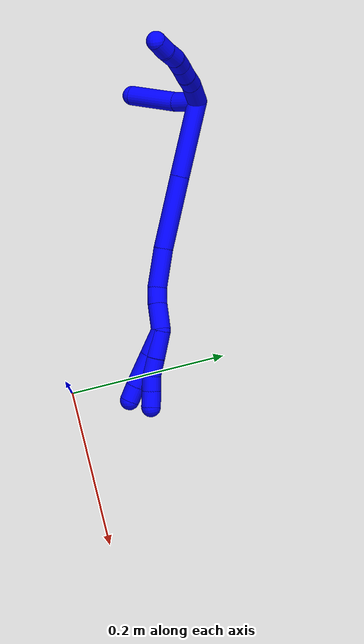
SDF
<sdf version="1.7">
 <world name="default">
  <model name="1">
   <static>0</static>
   <link name="1">
    <collision name="collision-cylinder-e_1_2_8">
     <pose>0.010541 -0.006153 0.013683 0.422619 0.612475 0.135443</pose>
     <geometry><cylinder><radius>0.0125</radius><length>0.036672</length></cylinder></geometry>
     <surface>
      <friction><ode><mu>1.16</mu><mu2>1.16</mu2><slip1>0</slip1><slip2>0</slip2></ode></friction>
      <contact><ode><kp>1e+06</kp><kd>1</kd><max_vel>0</max_vel><min_depth>0.001</min_depth></ode></contact>
     </surface>
    </collision>
    <visual name="visual-cylinder-e_1_2_8">
     <pose>0.010541 -0.006153 0.013683 0.422619 0.612475 0.135443</pose>
     <geometry><cylinder><radius>0.0125</radius><length>0.036672</length></cylinder></geometry>
     <material><ambient>0 0 1 1</ambient></material>
    </visual>
    <collision name="collision-cylinder-e_2_8_9">
     <pose>0.028342 -0.017466 0.034103 0.653488 0.707694 0.249073</pose>
     <geometry><cylinder><radius>0.0125</radius><length>0.022336</length></cylinder></geometry>
     <surface>
      <friction><ode><mu>1.16</mu><mu2>1.16</mu2><slip1>0</slip1><slip2>0</slip2></ode></friction>
      <contact><ode><kp>1e+06</kp><kd>1</kd><max_vel>0</max_vel><min_depth>0.001</min_depth></ode></contact>
     </surface>
    </collision>
    <visual name="visual-cylinder-e_2_8_9">
     <pose>0.028342 -0.017466 0.034103 0.653488 0.707694 0.249073</pose>
     <geometry><cylinder><radius>0.0125</radius><length>0.022336</length></cylinder></geometry>
     <material><ambient>0 0 1 1</ambient></material>
    </visual>
    <collision name="collision-cylinder-e_3_9_10">
     <pose>0.04216 -0.02768 0.049117 0.548318 0.594573 0.171901</pose>
     <geometry><cylinder><radius>0.0125</radius><length>0.023413</length></cylinder></geometry>
     <surface>
      <friction><ode><mu>1.16</mu><mu2>1.16</mu2><slip1>0</slip1><slip2>0</slip2></ode></friction>
      <contact><ode><kp>1e+06</kp><kd>1</kd><max_vel>0</max_vel><min_depth>0.001</min_depth></ode></contact>
     </surface>
    </collision>
    <visual name="visual-cylinder-e_3_9_10">
     <pose>0.04216 -0.02768 0.049117 0.548318 0.594573 0.171901</pose>
     <geometry><cylinder><radius>0.0125</radius><length>0.023413</length></cylinder></geometry>
     <material><ambient>0 0 1 1</ambient></material>
    </visual>
    <collision name="collision-cylinder-e_4_10_11">
     <pose>0.055863 -0.037794 0.06388 0.662361 0.715186 0.25556</pose>
     <geometry><cylinder><radius>0.0125</radius><length>0.021792</length></cylinder></geometry>
     <surface>
      <friction><ode><mu>1.16</mu><mu2>1.16</mu2><slip1>0</slip1><slip2>0</slip2></ode></friction>
      <contact><ode><kp>1e+06</kp><kd>1</kd><max_vel>0</max_vel><min_depth>0.001</min_depth></ode></contact>
     </surface>
    </collision>
    <visual name="visual-cylinder-e_4_10_11">
     <pose>0.055863 -0.037794 0.06388 0.662361 0.715186 0.25556</pose>
     <geometry><cylinder><radius>0.0125</radius><length>0.021792</length></cylinder></geometry>
     <material><ambient>0 0 1 1</ambient></material>
    </visual>
    <collision name="collision-cylinder-e_5_11_12">
     <pose>0.069214 -0.050173 0.077016 0.833357 0.560425 0.253379</pose>
     <geometry><cylinder><radius>0.0125</radius><length>0.02335</length></cylinder></geometry>
     <surface>
      <friction><ode><mu>1.16</mu><mu2>1.16</mu2><slip1>0</slip1><slip2>0</slip2></ode></friction>
      <contact><ode><kp>1e+06</kp><kd>1</kd><max_vel>0</max_vel><min_depth>0.001</min_depth></ode></contact>
     </surface>
    </collision>
    <visual name="visual-cylinder-e_5_11_12">
     <pose>0.069214 -0.050173 0.077016 0.833357 0.560425 0.253379</pose>
     <geometry><cylinder><radius>0.0125</radius><length>0.02335</length></cylinder></geometry>
     <material><ambient>0 0 1 1</ambient></material>
    </visual>
    <collision name="collision-cylinder-e_6_12_6">
     <pose>0.079566 -0.064241 0.09161 0.704134 0.378627 0.140551</pose>
     <geometry><cylinder><radius>0.0125</radius><length>0.022437</length></cylinder></geometry>
     <surface>
      <friction><ode><mu>1.16</mu><mu2>1.16</mu2><slip1>0</slip1><slip2>0</slip2></ode></friction>
      <contact><ode><kp>1e+06</kp><kd>1</kd><max_vel>0</max_vel><min_depth>0.001</min_depth></ode></contact>
     </surface>
    </collision>
    <visual name="visual-cylinder-e_6_12_6">
     <pose>0.079566 -0.064241 0.09161 0.704134 0.378627 0.140551</pose>
     <geometry><cylinder><radius>0.0125</radius><length>0.022437</length></cylinder></geometry>
     <material><ambient>0 0 1 1</ambient></material>
    </visual>
    <collision name="collision-cylinder-e_1_2_13">
     <pose>-0.014278 -0.009436 -0.000275 1.59989 -0.986645 -1.01111</pose>
     <geometry><cylinder><radius>0.0125</radius><length>0.034233</length></cylinder></geometry>
     <surface>
      <friction><ode><mu>1.16</mu><mu2>1.16</mu2><slip1>0</slip1><slip2>0</slip2></ode></friction>
      <contact><ode><kp>1e+06</kp><kd>1</kd><max_vel>0</max_vel><min_depth>0.001</min_depth></ode></contact>
     </surface>
    </collision>
    <visual name="visual-cylinder-e_1_2_13">
     <pose>-0.014278 -0.009436 -0.000275 1.59989 -0.986645 -1.01111</pose>
     <geometry><cylinder><radius>0.0125</radius><length>0.034233</length></cylinder></geometry>
     <material><ambient>0 0 1 1</ambient></material>
    </visual>
    <collision name="collision-cylinder-e_2_13_5">
     <pose>-0.05375 -0.039392 0.004502 1.32945 -0.87282 -0.70087</pose>
     <geometry><cylinder><radius>0.0125</radius><length>0.065767</length></cylinder></geometry>
     <surface>
      <friction><ode><mu>1.16</mu><mu2>1.16</mu2><slip1>0</slip1><slip2>0</slip2></ode></friction>
      <contact><ode><kp>1e+06</kp><kd>1</kd><max_vel>0</max_vel><min_depth>0.001</min_depth></ode></contact>
     </surface>
    </collision>
    <visual name="visual-cylinder-e_2_13_5">
     <pose>-0.05375 -0.039392 0.004502 1.32945 -0.87282 -0.70087</pose>
     <geometry><cylinder><radius>0.0125</radius><length>0.065767</length></cylinder></geometry>
     <material><ambient>0 0 1 1</ambient></material>
    </visual>
    <collision name="collision-cylinder-e_1_2_14">
     <pose>0.002238 -0.019502 -0.045027 2.73287 0.045583 0.219098</pose>
     <geometry><cylinder><radius>0.0125</radius><length>0.09824</length></cylinder></geometry>
     <surface>
      <friction><ode><mu>1.16</mu><mu2>1.16</mu2><slip1>0</slip1><slip2>0</slip2></ode></friction>
      <contact><ode><kp>1e+06</kp><kd>1</kd><max_vel>0</max_vel><min_depth>0.001</min_depth></ode></contact>
     </surface>
    </collision>
    <visual name="visual-cylinder-e_1_2_14">
     <pose>0.002238 -0.019502 -0.045027 2.73287 0.045583 0.219098</pose>
     <geometry><cylinder><radius>0.0125</radius><length>0.09824</length></cylinder></geometry>
     <material><ambient>0 0 1 1</ambient></material>
    </visual>
    <collision name="collision-cylinder-e_2_14_15">
     <pose>0.007773 -0.0579 -0.13322 2.72895 0.069842 0.330784</pose>
     <geometry><cylinder><radius>0.0125</radius><length>0.09447</length></cylinder></geometry>
     <surface>
      <friction><ode><mu>1.16</mu><mu2>1.16</mu2><slip1>0</slip1><slip2>0</slip2></ode></friction>
      <contact><ode><kp>1e+06</kp><kd>1</kd><max_vel>0</max_vel><min_depth>0.001</min_depth></ode></contact>
     </surface>
    </collision>
    <visual name="visual-cylinder-e_2_14_15">
     <pose>0.007773 -0.0579 -0.13322 2.72895 0.069842 0.330784</pose>
     <geometry><cylinder><radius>0.0125</radius><length>0.09447</length></cylinder></geometry>
     <material><ambient>0 0 1 1</ambient></material>
    </visual>
    <collision name="collision-cylinder-e_3_15_16">
     <pose>0.014817 -0.085995 -0.20003 2.77057 0.146669 0.746253</pose>
     <geometry><cylinder><radius>0.0125</radius><length>0.051294</length></cylinder></geometry>
     <surface>
      <friction><ode><mu>1.16</mu><mu2>1.16</mu2><slip1>0</slip1><slip2>0</slip2></ode></friction>
      <contact><ode><kp>1e+06</kp><kd>1</kd><max_vel>0</max_vel><min_depth>0.001</min_depth></ode></contact>
     </surface>
    </collision>
    <visual name="visual-cylinder-e_3_15_16">
     <pose>0.014817 -0.085995 -0.20003 2.77057 0.146669 0.746253</pose>
     <geometry><cylinder><radius>0.0125</radius><length>0.051294</length></cylinder></geometry>
     <material><ambient>0 0 1 1</ambient></material>
    </visual>
    <collision name="collision-cylinder-e_4_16_17">
     <pose>0.023023 -0.097952 -0.233424 2.86587 0.414502 1.97509</pose>
     <geometry><cylinder><radius>0.0125</radius><length>0.022138</length></cylinder></geometry>
     <surface>
      <friction><ode><mu>1.16</mu><mu2>1.16</mu2><slip1>0</slip1><slip2>0</slip2></ode></friction>
      <contact><ode><kp>1e+06</kp><kd>1</kd><max_vel>0</max_vel><min_depth>0.001</min_depth></ode></contact>
     </surface>
    </collision>
    <visual name="visual-cylinder-e_4_16_17">
     <pose>0.023023 -0.097952 -0.233424 2.86587 0.414502 1.97509</pose>
     <geometry><cylinder><radius>0.0125</radius><length>0.022138</length></cylinder></geometry>
     <material><ambient>0 0 1 1</ambient></material>
    </visual>
    <collision name="collision-cylinder-e_5_17_1">
     <pose>0.035326 -0.103407 -0.25793 2.96089 0.48183 2.43501</pose>
     <geometry><cylinder><radius>0.0125</radius><length>0.033858</length></cylinder></geometry>
     <surface>
      <friction><ode><mu>1.16</mu><mu2>1.16</mu2><slip1>0</slip1><slip2>0</slip2></ode></friction>
      <contact><ode><kp>1e+06</kp><kd>1</kd><max_vel>0</max_vel><min_depth>0.001</min_depth></ode></contact>
     </surface>
    </collision>
    <visual name="visual-cylinder-e_5_17_1">
     <pose>0.035326 -0.103407 -0.25793 2.96089 0.48183 2.43501</pose>
     <geometry><cylinder><radius>0.0125</radius><length>0.033858</length></cylinder></geometry>
     <material><ambient>0 0 1 1</ambient></material>
    </visual>
    <collision name="collision-cylinder-e_1_1_18">
     <pose>0.044368 -0.112933 -0.289083 2.74688 0.067298 0.333559</pose>
     <geometry><cylinder><radius>0.0125</radius><length>0.035604</length></cylinder></geometry>
     <surface>
      <friction><ode><mu>1.16</mu><mu2>1.16</mu2><slip1>0</slip1><slip2>0</slip2></ode></friction>
      <contact><ode><kp>1e+06</kp><kd>1</kd><max_vel>0</max_vel><min_depth>0.001</min_depth></ode></contact>
     </surface>
    </collision>
    <visual name="visual-cylinder-e_1_1_18">
     <pose>0.044368 -0.112933 -0.289083 2.74688 0.067298 0.333559</pose>
     <geometry><cylinder><radius>0.0125</radius><length>0.035604</length></cylinder></geometry>
     <material><ambient>0 0 1 1</ambient></material>
    </visual>
    <collision name="collision-cylinder-e_2_18_19">
     <pose>0.045646 -0.124087 -0.316248 2.75975 0.006955 0.035984</pose>
     <geometry><cylinder><radius>0.0125</radius><length>0.023209</length></cylinder></geometry>
     <surface>
      <friction><ode><mu>1.16</mu><mu2>1.16</mu2><slip1>0</slip1><slip2>0</slip2></ode></friction>
      <contact><ode><kp>1e+06</kp><kd>1</kd><max_vel>0</max_vel><min_depth>0.001</min_depth></ode></contact>
     </surface>
    </collision>
    <visual name="visual-cylinder-e_2_18_19">
     <pose>0.045646 -0.124087 -0.316248 2.75975 0.006955 0.035984</pose>
     <geometry><cylinder><radius>0.0125</radius><length>0.023209</length></cylinder></geometry>
     <material><ambient>0 0 1 1</ambient></material>
    </visual>
    <collision name="collision-cylinder-e_3_19_20">
     <pose>0.047107 -0.130358 -0.33685 2.94615 0.136824 1.22004</pose>
     <geometry><cylinder><radius>0.0125</radius><length>0.020239</length></cylinder></geometry>
     <surface>
      <friction><ode><mu>1.16</mu><mu2>1.16</mu2><slip1>0</slip1><slip2>0</slip2></ode></friction>
      <contact><ode><kp>1e+06</kp><kd>1</kd><max_vel>0</max_vel><min_depth>0.001</min_depth></ode></contact>
     </surface>
    </collision>
    <visual name="visual-cylinder-e_3_19_20">
     <pose>0.047107 -0.130358 -0.33685 2.94615 0.136824 1.22004</pose>
     <geometry><cylinder><radius>0.0125</radius><length>0.020239</length></cylinder></geometry>
     <material><ambient>0 0 1 1</ambient></material>
    </visual>
    <collision name="collision-cylinder-e_4_20_4">
     <pose>0.050504 -0.134795 -0.356656 2.89693 0.193746 1.33773</pose>
     <geometry><cylinder><radius>0.0125</radius><length>0.020949</length></cylinder></geometry>
     <surface>
      <friction><ode><mu>1.16</mu><mu2>1.16</mu2><slip1>0</slip1><slip2>0</slip2></ode></friction>
      <contact><ode><kp>1e+06</kp><kd>1</kd><max_vel>0</max_vel><min_depth>0.001</min_depth></ode></contact>
     </surface>
    </collision>
    <visual name="visual-cylinder-e_4_20_4">
     <pose>0.050504 -0.134795 -0.356656 2.89693 0.193746 1.33773</pose>
     <geometry><cylinder><radius>0.0125</radius><length>0.020949</length></cylinder></geometry>
     <material><ambient>0 0 1 1</ambient></material>
    </visual>
    <collision name="collision-cylinder-e_1_1_21">
     <pose>0.040372 -0.115122 -0.287786 2.60315 -0.157853 -0.558321</pose>
     <geometry><cylinder><radius>0.0125</radius><length>0.035617</length></cylinder></geometry>
     <surface>
      <friction><ode><mu>1.16</mu><mu2>1.16</mu2><slip1>0</slip1><slip2>0</slip2></ode></friction>
      <contact><ode><kp>1e+06</kp><kd>1</kd><max_vel>0</max_vel><min_depth>0.001</min_depth></ode></contact>
     </surface>
    </collision>
    <visual name="visual-cylinder-e_1_1_21">
     <pose>0.040372 -0.115122 -0.287786 2.60315 -0.157853 -0.558321</pose>
     <geometry><cylinder><radius>0.0125</radius><length>0.035617</length></cylinder></geometry>
     <material><ambient>0 0 1 1</ambient></material>
    </visual>
    <collision name="collision-cylinder-e_2_21_22">
     <pose>0.035302 -0.135758 -0.321426 2.58185 -0.103363 -0.356136</pose>
     <geometry><cylinder><radius>0.0125</radius><length>0.043995</length></cylinder></geometry>
     <surface>
      <friction><ode><mu>1.16</mu><mu2>1.16</mu2><slip1>0</slip1><slip2>0</slip2></ode></friction>
      <contact><ode><kp>1e+06</kp><kd>1</kd><max_vel>0</max_vel><min_depth>0.001</min_depth></ode></contact>
     </surface>
    </collision>
    <visual name="visual-cylinder-e_2_21_22">
     <pose>0.035302 -0.135758 -0.321426 2.58185 -0.103363 -0.356136</pose>
     <geometry><cylinder><radius>0.0125</radius><length>0.043995</length></cylinder></geometry>
     <material><ambient>0 0 1 1</ambient></material>
    </visual>
    <collision name="collision-cylinder-e_3_22_3">
     <pose>0.032588 -0.152664 -0.34867 2.59554 -0.043604 -0.155428</pose>
     <geometry><cylinder><radius>0.0125</radius><length>0.020388</length></cylinder></geometry>
     <surface>
      <friction><ode><mu>1.16</mu><mu2>1.16</mu2><slip1>0</slip1><slip2>0</slip2></ode></friction>
      <contact><ode><kp>1e+06</kp><kd>1</kd><max_vel>0</max_vel><min_depth>0.001</min_depth></ode></contact>
     </surface>
    </collision>
    <visual name="visual-cylinder-e_3_22_3">
     <pose>0.032588 -0.152664 -0.34867 2.59554 -0.043604 -0.155428</pose>
     <geometry><cylinder><radius>0.0125</radius><length>0.020388</length></cylinder></geometry>
     <material><ambient>0 0 1 1</ambient></material>
    </visual>
    <collision name="collision-sphere-3">
     <pose>0.032144 -0.157953 -0.357373 0 -0 0</pose>
     <geometry><sphere><radius>0.0125</radius></sphere></geometry>
     <surface>
      <friction><ode><mu>1.16</mu><mu2>1.16</mu2><slip1>0</slip1><slip2>0</slip2></ode></friction>
      <contact><ode><kp>1e+06</kp><kd>1</kd><max_vel>0</max_vel><min_depth>0.001</min_depth></ode></contact>
     </surface>
    </collision>
    <visual name="visual-sphere-3">
     <pose>0.032144 -0.157953 -0.357373 0 -0 0</pose>
     <geometry><sphere><radius>0.0125</radius></sphere></geometry>
     <material><ambient>0 0 1 1</ambient></material>
    </visual>
    <collision name="collision-sphere-22">
     <pose>0.033033 -0.147375 -0.339967 0 -0 0</pose>
     <geometry><sphere><radius>0.0125</radius></sphere></geometry>
     <surface>
      <friction><ode><mu>1.16</mu><mu2>1.16</mu2><slip1>0</slip1><slip2>0</slip2></ode></friction>
      <contact><ode><kp>1e+06</kp><kd>1</kd><max_vel>0</max_vel><min_depth>0.001</min_depth></ode></contact>
     </surface>
    </collision>
    <visual name="visual-sphere-22">
     <pose>0.033033 -0.147375 -0.339967 0 -0 0</pose>
     <geometry><sphere><radius>0.0125</radius></sphere></geometry>
     <material><ambient>0 0 1 1</ambient></material>
    </visual>
    <collision name="collision-sphere-21">
     <pose>0.037572 -0.12414 -0.302885 0 -0 0</pose>
     <geometry><sphere><radius>0.0125</radius></sphere></geometry>
     <surface>
      <friction><ode><mu>1.16</mu><mu2>1.16</mu2><slip1>0</slip1><slip2>0</slip2></ode></friction>
      <contact><ode><kp>1e+06</kp><kd>1</kd><max_vel>0</max_vel><min_depth>0.001</min_depth></ode></contact>
     </surface>
    </collision>
    <visual name="visual-sphere-21">
     <pose>0.037572 -0.12414 -0.302885 0 -0 0</pose>
     <geometry><sphere><radius>0.0125</radius></sphere></geometry>
     <material><ambient>0 0 1 1</ambient></material>
    </visual>
    <collision name="collision-sphere-4">
     <pose>0.052521 -0.137284 -0.366628 0 -0 0</pose>
     <geometry><sphere><radius>0.0125</radius></sphere></geometry>
     <surface>
      <friction><ode><mu>1.16</mu><mu2>1.16</mu2><slip1>0</slip1><slip2>0</slip2></ode></friction>
      <contact><ode><kp>1e+06</kp><kd>1</kd><max_vel>0</max_vel><min_depth>0.001</min_depth></ode></contact>
     </surface>
    </collision>
    <visual name="visual-sphere-4">
     <pose>0.052521 -0.137284 -0.366628 0 -0 0</pose>
     <geometry><sphere><radius>0.0125</radius></sphere></geometry>
     <material><ambient>0 0 1 1</ambient></material>
    </visual>
    <collision name="collision-sphere-20">
     <pose>0.048487 -0.132305 -0.346684 0 -0 0</pose>
     <geometry><sphere><radius>0.0125</radius></sphere></geometry>
     <surface>
      <friction><ode><mu>1.16</mu><mu2>1.16</mu2><slip1>0</slip1><slip2>0</slip2></ode></friction>
      <contact><ode><kp>1e+06</kp><kd>1</kd><max_vel>0</max_vel><min_depth>0.001</min_depth></ode></contact>
     </surface>
    </collision>
    <visual name="visual-sphere-20">
     <pose>0.048487 -0.132305 -0.346684 0 -0 0</pose>
     <geometry><sphere><radius>0.0125</radius></sphere></geometry>
     <material><ambient>0 0 1 1</ambient></material>
    </visual>
    <collision name="collision-sphere-12">
     <pose>0.07542 -0.057493 0.083665 0 -0 0</pose>
     <geometry><sphere><radius>0.0125</radius></sphere></geometry>
     <surface>
      <friction><ode><mu>1.16</mu><mu2>1.16</mu2><slip1>0</slip1><slip2>0</slip2></ode></friction>
      <contact><ode><kp>1e+06</kp><kd>1</kd><max_vel>0</max_vel><min_depth>0.001</min_depth></ode></contact>
     </surface>
    </collision>
    <visual name="visual-sphere-12">
     <pose>0.07542 -0.057493 0.083665 0 -0 0</pose>
     <geometry><sphere><radius>0.0125</radius></sphere></geometry>
     <material><ambient>0 0 1 1</ambient></material>
    </visual>
    <collision name="collision-sphere-11">
     <pose>0.063008 -0.042853 0.070367 0 -0 0</pose>
     <geometry><sphere><radius>0.0125</radius></sphere></geometry>
     <surface>
      <friction><ode><mu>1.16</mu><mu2>1.16</mu2><slip1>0</slip1><slip2>0</slip2></ode></friction>
      <contact><ode><kp>1e+06</kp><kd>1</kd><max_vel>0</max_vel><min_depth>0.001</min_depth></ode></contact>
     </surface>
    </collision>
    <visual name="visual-sphere-11">
     <pose>0.063008 -0.042853 0.070367 0 -0 0</pose>
     <geometry><sphere><radius>0.0125</radius></sphere></geometry>
     <material><ambient>0 0 1 1</ambient></material>
    </visual>
    <collision name="collision-sphere-10">
     <pose>0.048718 -0.032735 0.057393 0 -0 0</pose>
     <geometry><sphere><radius>0.0125</radius></sphere></geometry>
     <surface>
      <friction><ode><mu>1.16</mu><mu2>1.16</mu2><slip1>0</slip1><slip2>0</slip2></ode></friction>
      <contact><ode><kp>1e+06</kp><kd>1</kd><max_vel>0</max_vel><min_depth>0.001</min_depth></ode></contact>
     </surface>
    </collision>
    <visual name="visual-sphere-10">
     <pose>0.048718 -0.032735 0.057393 0 -0 0</pose>
     <geometry><sphere><radius>0.0125</radius></sphere></geometry>
     <material><ambient>0 0 1 1</ambient></material>
    </visual>
    <collision name="collision-sphere-9">
     <pose>0.035603 -0.022625 0.040841 0 -0 0</pose>
     <geometry><sphere><radius>0.0125</radius></sphere></geometry>
     <surface>
      <friction><ode><mu>1.16</mu><mu2>1.16</mu2><slip1>0</slip1><slip2>0</slip2></ode></friction>
      <contact><ode><kp>1e+06</kp><kd>1</kd><max_vel>0</max_vel><min_depth>0.001</min_depth></ode></contact>
     </surface>
    </collision>
    <visual name="visual-sphere-9">
     <pose>0.035603 -0.022625 0.040841 0 -0 0</pose>
     <geometry><sphere><radius>0.0125</radius></sphere></geometry>
     <material><ambient>0 0 1 1</ambient></material>
    </visual>
    <collision name="collision-sphere-2">
     <geometry><sphere><radius>0.0125</radius></sphere></geometry>
     <surface>
      <friction><ode><mu>1.16</mu><mu2>1.16</mu2><slip1>0</slip1><slip2>0</slip2></ode></friction>
      <contact><ode><kp>1e+06</kp><kd>1</kd><max_vel>0</max_vel><min_depth>0.001</min_depth></ode></contact>
     </surface>
    </collision>
    <visual name="visual-sphere-2">
     <geometry><sphere><radius>0.0125</radius></sphere></geometry>
     <material><ambient>0 0 1 1</ambient></material>
    </visual>
    <collision name="collision-sphere-19">
     <pose>0.045727 -0.128411 -0.327016 0 -0 0</pose>
     <geometry><sphere><radius>0.0125</radius></sphere></geometry>
     <surface>
      <friction><ode><mu>1.16</mu><mu2>1.16</mu2><slip1>0</slip1><slip2>0</slip2></ode></friction>
      <contact><ode><kp>1e+06</kp><kd>1</kd><max_vel>0</max_vel><min_depth>0.001</min_depth></ode></contact>
     </surface>
    </collision>
    <visual name="visual-sphere-19">
     <pose>0.045727 -0.128411 -0.327016 0 -0 0</pose>
     <geometry><sphere><radius>0.0125</radius></sphere></geometry>
     <material><ambient>0 0 1 1</ambient></material>
    </visual>
    <collision name="collision-sphere-8">
     <pose>0.021082 -0.012307 0.027366 0 -0 0</pose>
     <geometry><sphere><radius>0.0125</radius></sphere></geometry>
     <surface>
      <friction><ode><mu>1.16</mu><mu2>1.16</mu2><slip1>0</slip1><slip2>0</slip2></ode></friction>
      <contact><ode><kp>1e+06</kp><kd>1</kd><max_vel>0</max_vel><min_depth>0.001</min_depth></ode></contact>
     </surface>
    </collision>
    <visual name="visual-sphere-8">
     <pose>0.021082 -0.012307 0.027366 0 -0 0</pose>
     <geometry><sphere><radius>0.0125</radius></sphere></geometry>
     <material><ambient>0 0 1 1</ambient></material>
    </visual>
    <collision name="collision-sphere-6">
     <pose>0.083713 -0.070989 0.099555 0 -0 0</pose>
     <geometry><sphere><radius>0.0125</radius></sphere></geometry>
     <surface>
      <friction><ode><mu>1.16</mu><mu2>1.16</mu2><slip1>0</slip1><slip2>0</slip2></ode></friction>
      <contact><ode><kp>1e+06</kp><kd>1</kd><max_vel>0</max_vel><min_depth>0.001</min_depth></ode></contact>
     </surface>
    </collision>
    <visual name="visual-sphere-6">
     <pose>0.083713 -0.070989 0.099555 0 -0 0</pose>
     <geometry><sphere><radius>0.0125</radius></sphere></geometry>
     <material><ambient>0 0 1 1</ambient></material>
    </visual>
    <collision name="collision-sphere-13">
     <pose>-0.028556 -0.018871 -0.000549 0 -0 0</pose>
     <geometry><sphere><radius>0.0125</radius></sphere></geometry>
     <surface>
      <friction><ode><mu>1.16</mu><mu2>1.16</mu2><slip1>0</slip1><slip2>0</slip2></ode></friction>
      <contact><ode><kp>1e+06</kp><kd>1</kd><max_vel>0</max_vel><min_depth>0.001</min_depth></ode></contact>
     </surface>
    </collision>
    <visual name="visual-sphere-13">
     <pose>-0.028556 -0.018871 -0.000549 0 -0 0</pose>
     <geometry><sphere><radius>0.0125</radius></sphere></geometry>
     <material><ambient>0 0 1 1</ambient></material>
    </visual>
    <collision name="collision-sphere-5">
     <pose>-0.078943 -0.059913 0.009553 0 -0 0</pose>
     <geometry><sphere><radius>0.0125</radius></sphere></geometry>
     <surface>
      <friction><ode><mu>1.16</mu><mu2>1.16</mu2><slip1>0</slip1><slip2>0</slip2></ode></friction>
      <contact><ode><kp>1e+06</kp><kd>1</kd><max_vel>0</max_vel><min_depth>0.001</min_depth></ode></contact>
     </surface>
    </collision>
    <visual name="visual-sphere-5">
     <pose>-0.078943 -0.059913 0.009553 0 -0 0</pose>
     <geometry><sphere><radius>0.0125</radius></sphere></geometry>
     <material><ambient>0 0 1 1</ambient></material>
    </visual>
    <collision name="collision-sphere-14">
     <pose>0.004477 -0.039003 -0.090055 0 -0 0</pose>
     <geometry><sphere><radius>0.0125</radius></sphere></geometry>
     <surface>
      <friction><ode><mu>1.16</mu><mu2>1.16</mu2><slip1>0</slip1><slip2>0</slip2></ode></friction>
      <contact><ode><kp>1e+06</kp><kd>1</kd><max_vel>0</max_vel><min_depth>0.001</min_depth></ode></contact>
     </surface>
    </collision>
    <visual name="visual-sphere-14">
     <pose>0.004477 -0.039003 -0.090055 0 -0 0</pose>
     <geometry><sphere><radius>0.0125</radius></sphere></geometry>
     <material><ambient>0 0 1 1</ambient></material>
    </visual>
    <collision name="collision-sphere-15">
     <pose>0.011069 -0.076796 -0.176385 0 -0 0</pose>
     <geometry><sphere><radius>0.0125</radius></sphere></geometry>
     <surface>
      <friction><ode><mu>1.16</mu><mu2>1.16</mu2><slip1>0</slip1><slip2>0</slip2></ode></friction>
      <contact><ode><kp>1e+06</kp><kd>1</kd><max_vel>0</max_vel><min_depth>0.001</min_depth></ode></contact>
     </surface>
    </collision>
    <visual name="visual-sphere-15">
     <pose>0.011069 -0.076796 -0.176385 0 -0 0</pose>
     <geometry><sphere><radius>0.0125</radius></sphere></geometry>
     <material><ambient>0 0 1 1</ambient></material>
    </visual>
    <collision name="collision-sphere-16">
     <pose>0.018565 -0.095194 -0.223675 0 -0 0</pose>
     <geometry><sphere><radius>0.0125</radius></sphere></geometry>
     <surface>
      <friction><ode><mu>1.16</mu><mu2>1.16</mu2><slip1>0</slip1><slip2>0</slip2></ode></friction>
      <contact><ode><kp>1e+06</kp><kd>1</kd><max_vel>0</max_vel><min_depth>0.001</min_depth></ode></contact>
     </surface>
    </collision>
    <visual name="visual-sphere-16">
     <pose>0.018565 -0.095194 -0.223675 0 -0 0</pose>
     <geometry><sphere><radius>0.0125</radius></sphere></geometry>
     <material><ambient>0 0 1 1</ambient></material>
    </visual>
    <collision name="collision-sphere-17">
     <pose>0.027481 -0.100711 -0.243172 0 -0 0</pose>
     <geometry><sphere><radius>0.0125</radius></sphere></geometry>
     <surface>
      <friction><ode><mu>1.16</mu><mu2>1.16</mu2><slip1>0</slip1><slip2>0</slip2></ode></friction>
      <contact><ode><kp>1e+06</kp><kd>1</kd><max_vel>0</max_vel><min_depth>0.001</min_depth></ode></contact>
     </surface>
    </collision>
    <visual name="visual-sphere-17">
     <pose>0.027481 -0.100711 -0.243172 0 -0 0</pose>
     <geometry><sphere><radius>0.0125</radius></sphere></geometry>
     <material><ambient>0 0 1 1</ambient></material>
    </visual>
    <collision name="collision-sphere-1">
     <pose>0.043171 -0.106103 -0.272687 0 -0 0</pose>
     <geometry><sphere><radius>0.0125</radius></sphere></geometry>
     <surface>
      <friction><ode><mu>1.16</mu><mu2>1.16</mu2><slip1>0</slip1><slip2>0</slip2></ode></friction>
      <contact><ode><kp>1e+06</kp><kd>1</kd><max_vel>0</max_vel><min_depth>0.001</min_depth></ode></contact>
     </surface>
    </collision>
    <visual name="visual-sphere-1">
     <pose>0.043171 -0.106103 -0.272687 0 -0 0</pose>
     <geometry><sphere><radius>0.0125</radius></sphere></geometry>
     <material><ambient>0 0 1 1</ambient></material>
    </visual>
    <collision name="collision-sphere-18">
     <pose>0.045565 -0.119763 -0.305479 0 -0 0</pose>
     <geometry><sphere><radius>0.0125</radius></sphere></geometry>
     <surface>
      <friction><ode><mu>1.16</mu><mu2>1.16</mu2><slip1>0</slip1><slip2>0</slip2></ode></friction>
      <contact><ode><kp>1e+06</kp><kd>1</kd><max_vel>0</max_vel><min_depth>0.001</min_depth></ode></contact>
     </surface>
    </collision>
    <visual name="visual-sphere-18">
     <pose>0.045565 -0.119763 -0.305479 0 -0 0</pose>
     <geometry><sphere><radius>0.0125</radius></sphere></geometry>
     <material><ambient>0 0 1 1</ambient></material>
    </visual>
    <inertial>
     <pose>0.019103 -0.067505 -0.128859 0 -0 0</pose>
     <mass>0.75</mass>
     <inertia>
      <ixx>0.000251</ixx>
      <ixy>0</ixy>
      <ixz>0</ixz>
      <iyy>-0.000109</iyy>
      <iyz>0</iyz>
      <izz>8.2e-05</izz>
     </inertia>
    </inertial>
   </link>
   <pose>-0.317996 0.245467 0.070875 -0.643328 -1.10816 0.601817</pose>
  </model>
 </world>
</sdf>
